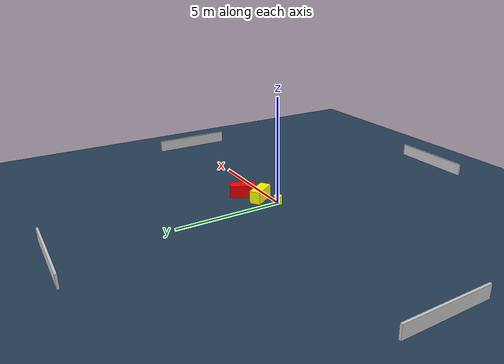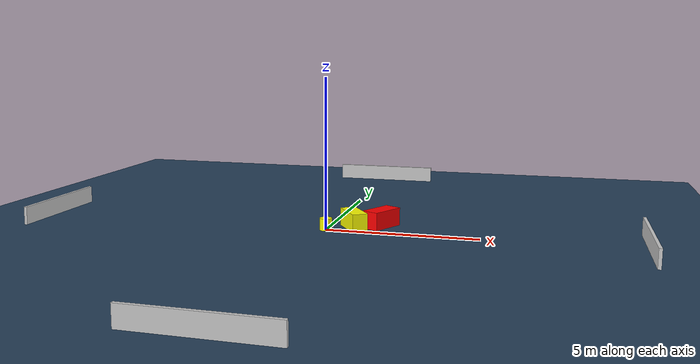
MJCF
<?xml version="1.0" ?>
<mujoco model="generated_environment">
  <option timestep="0.01" integrator="RK4" cone="elliptic"/>
  <default>
    <geom density="1"/>
  </default>
  <asset>
    <texture builtin="gradient" height="3072" name="skybox" rgb1="0.3 0.5 0.7" rgb2="0 0 0" type="skybox" width="512"/>
    <texture builtin="checker" height="300" name="groundplane" rgb1="0.2 0.3 0.4" rgb2="0.1 0.2 0.3" type="2d" width="300"/>
    <material name="groundplane" reflectance="0.2" texrepeat="5 5" texture="groundplane"/>
  </asset>
  <worldbody>
    <light dir="0 0 -1" directional="true" pos="0 0 1.5"/>
    <geom condim="3" friction="0.5 0.005 0.001" material="groundplane" name="floor" pos="0 0 0" size="0 0 0.05" type="plane"/>
    <body name="walls">
      <geom name="wall_1" condim="4" pos="-10.0 0.0 0.3" rgba="0.800000011920929 0.800000011920929 0.800000011920929 1.0" size="0.05 2.0 0.3" type="box"/>
      <geom name="wall_2" condim="4" pos="10.0 0.0 0.3" rgba="0.800000011920929 0.800000011920929 0.800000011920929 1.0" size="0.05 2.0 0.3" type="box"/>
      <geom name="wall_3" condim="4" pos="0.0 -10.0 0.3" rgba="0.800000011920929 0.800000011920929 0.800000011920929 1.0" size="2.0 0.05 0.3" type="box"/>
      <geom name="wall_4" condim="4" pos="0.0 10.0 0.3" rgba="0.800000011920929 0.800000011920929 0.800000011920929 1.0" size="2.0 0.05 0.3" type="box"/>
    </body>
    <body name="robot">
      <joint name="joint_x" type="slide" pos="0 0 0" axis="1 0 0"/>
      <joint name="joint_y" type="slide" pos="0 0 0" axis="0 1 0"/>
      <geom name="robot" type="cylinder" pos="0.0 0.0 0.2" size="0.2 0.2 0.0" mass="5.0" friction="1.0 0.005 0.0001" condim="4" rgba="1.0 1.0 0.0 1.0"/>
    </body>
    <body name="obstacle_1_movable">
      <geom name="obstacle_1_movable" condim="4" pos="0.8394449637255745 0.4477966383708449 0.3" euler="0 0 213.80083932250506" friction="0.0 0.005 0.001" rgba="1.0 1.0 0.0 1.0" size="0.25931201514099983 0.5889332350888513 0.3" type="box" mass="0.1"/>
      <joint type="free"/>
    </body>
    <body name="obstacle_2_static">
      <geom name="obstacle_2_static" condim="4" pos="1.6730064031707406 0.9311468583852252 0.3" euler="0 0 61.94073947458379" friction="0.0 0.005 0.001" rgba="1.0 0.0 0.0 1.0" size="0.6093230421336595 0.2912192705865019 0.3" type="box"/>
    </body>
  </worldbody>
  <actuator>
    <motor name="actuator_x" joint="joint_x" gear="1" ctrlrange="-1 1"/>
    <motor name="actuator_y" joint="joint_y" gear="1" ctrlrange="-1 1"/>
  </actuator>
</mujoco>
